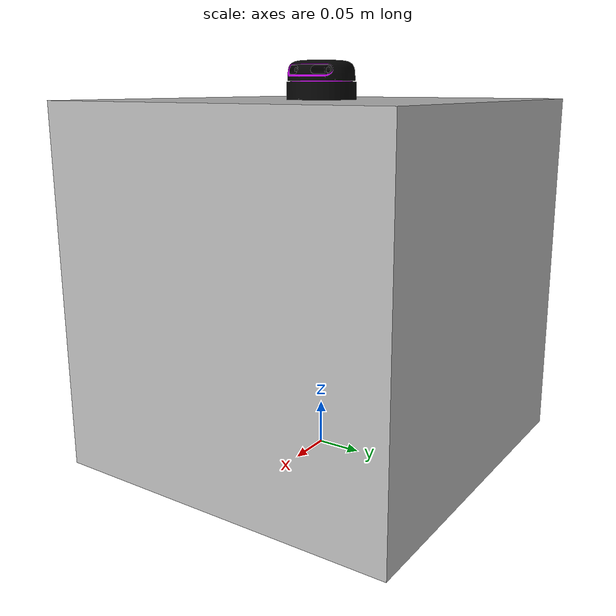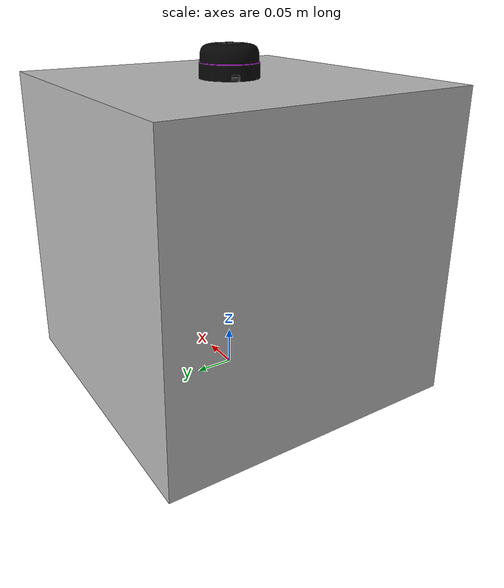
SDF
<?xml version="1.0" ?>
<!-- |    This document was autogenerated by xmacro4sdf from src/rmul24_gazebo_simulator/resource/models/rplidar_a2/model.sdf.xmacro  | -->
<!-- |    EDITING THIS FILE BY HAND IS NOT RECOMMENDED                                                                                | -->
<sdf version="1.7">
	<!--xmacro_define_block: rplidar_a2-->
	<!--rplidar a2-->
	<model name="simple_rplidar_a2">
		<pose>0 0 0.2 0 0 0</pose>
		<link name="base_link">
			<inertial>
				<mass>0.4</mass>
				<inertia>
					<ixx>0.01066666666666667</ixx>
					<ixy>0</ixy>
					<ixz>0</ixz>
					<iyy>0.01066666666666667</iyy>
					<iyz>0</iyz>
					<izz>0.01066666666666667</izz>
				</inertia>
			</inertial>
			<visual name="visual">
				<geometry>
					<box>
						<size>0.4 0.4 0.4</size>
					</box>
				</geometry>
			</visual>
			<collision name="collision">
				<geometry>
					<box>
						<size>0.4 0.4 0.4</size>
					</box>
				</geometry>
			</collision>
		</link>
		<!--update_rate(10-15),samples(400)-->
		<joint name="simple_rplidar_a2_joint" type="fixed">
			<pose relative_to="base_link">0 0 0.2 0 0 0</pose>
			<parent>base_link</parent>
			<child>simple_rplidar_a2</child>
		</joint>
		<link name="simple_rplidar_a2">
			<pose relative_to="simple_rplidar_a2_joint">0 0 0 0 0 0</pose>
			<inertial>
				<pose>0 0 0.02 0 0 0</pose>
				<mass>0.005</mass>
				<inertia>
					<ixx>2.6666666666666664e-06</ixx>
					<ixy>0</ixy>
					<ixz>0</ixz>
					<iyy>2.6666666666666664e-06</iyy>
					<iyz>0</iyz>
					<izz>4.000000000000001e-06</izz>
				</inertia>
			</inertial>
			<visual name="visual">
				<geometry>
					<mesh>
						<uri>model://rplidar_a2/meshes/rplidar_a2.dae</uri>
					</mesh>
				</geometry>
			</visual>
			<collision name="collision">
				<pose>0 0 0.02 0 0 0</pose>
				<geometry>
					<cylinder>
						<radius>0.04</radius>
						<length>0.04</length>
					</cylinder>
				</geometry>
			</collision>
			<sensor name="simple_rplidar_a2" type="gpu_lidar">
				<ignition_frame_id>simple_rplidar_a2</ignition_frame_id>
				<pose>0 0 0.03 0 0 0</pose>
				<always_on>true</always_on>
				<visualize>true</visualize>
				<update_rate>10.0</update_rate>
				<ray>
					<scan>
						<horizontal>
							<samples>400.0</samples>
							<resolution>1.0</resolution>
							<min_angle>0</min_angle>
							<max_angle>6.28000020980835</max_angle>
						</horizontal>
					</scan>
					<range>
						<min>0.15</min>
						<max>12.0</max>
					</range>
				</ray>
				<noise>
					<type>gaussian</type>
					<mean>0.0</mean>
					<stddev>0.01</stddev>
				</noise>
			</sensor>
		</link>
	</model>
</sdf>
